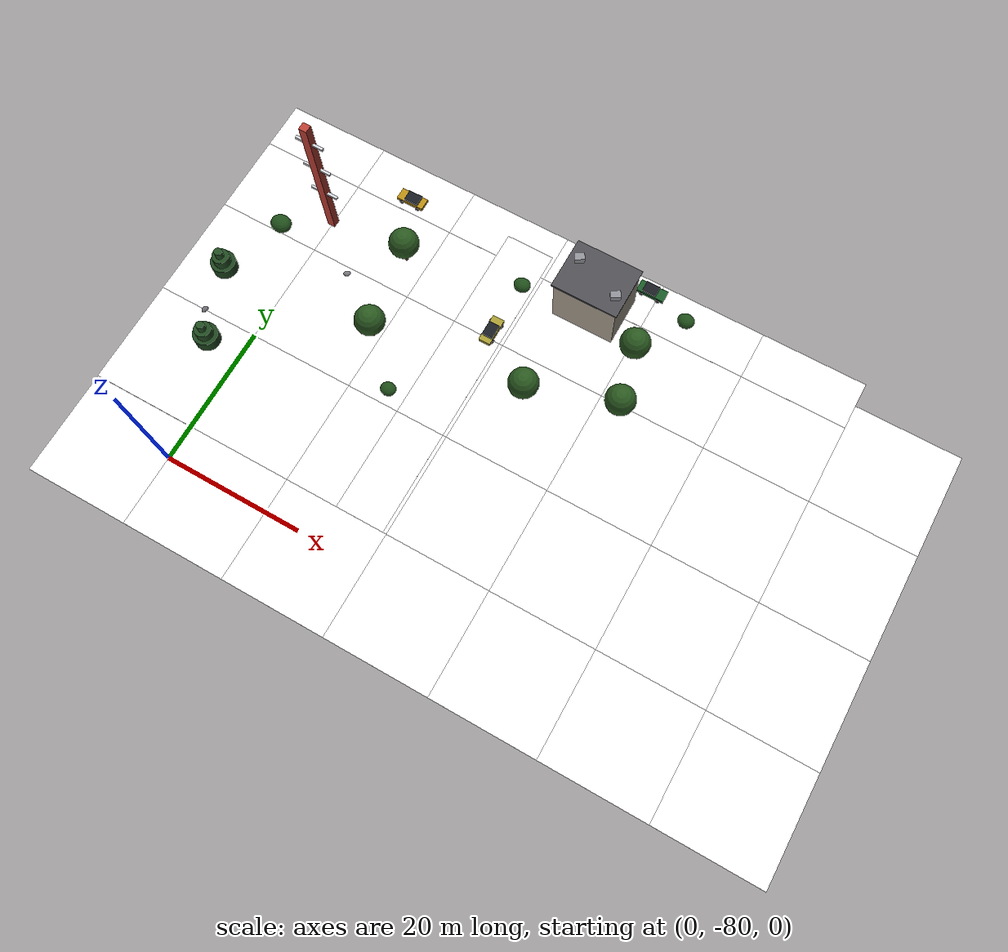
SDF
<sdf version="1.9">
 <world name="iris_runway">
  <model name="ground">
   <static>true</static>
   <link name="link">
    <collision name="c">
     <geometry><plane><normal>0 0 1</normal><size>2000 2000</size></plane></geometry>
    </collision>
   </link>
  </model>
  <include>
   <name>g_5_0</name>
   <pose degrees="true">-7.5 -82.5 0.01 0 0 90</pose>
   <uri>model://grass_tile</uri>
  </include>
  <include>
   <name>g_5_1</name>
   <pose degrees="true">-7.5 -67.5 0.01 0 0 0</pose>
   <uri>model://grass_tile_worn</uri>
  </include>
  <include>
   <name>g_5_2</name>
   <pose degrees="true">-7.5 -52.5 0.01 0 0 180</pose>
   <uri>model://grass_tile</uri>
  </include>
  <include>
   <name>g_5_3</name>
   <pose degrees="true">-7.5 -37.5 0.01 0 0 0</pose>
   <uri>model://grass_tile_worn</uri>
  </include>
  <include>
   <name>g_6_0</name>
   <pose degrees="true">7.5 -82.5 0.01 0 0 180</pose>
   <uri>model://grass_tile</uri>
  </include>
  <include>
   <name>g_6_1</name>
   <pose degrees="true">7.5 -67.5 0.01 0 0 270</pose>
   <uri>model://grass_tile</uri>
  </include>
  <include>
   <name>g_6_2</name>
   <pose degrees="true">7.5 -52.5 0.01 0 0 90</pose>
   <uri>model://grass_tile</uri>
  </include>
  <include>
   <name>g_6_3</name>
   <pose degrees="true">7.5 -37.5 0.01 0 0 270</pose>
   <uri>model://grass_tile</uri>
  </include>
  <include>
   <name>g_7_0</name>
   <pose degrees="true">22.5 -82.5 0.01 0 0 0</pose>
   <uri>model://grass_tile_worn</uri>
  </include>
  <include>
   <name>g_7_1</name>
   <pose degrees="true">22.5 -67.5 0.01 0 0 90</pose>
   <uri>model://grass_tile</uri>
  </include>
  <include>
   <name>g_7_2</name>
   <pose degrees="true">22.5 -52.5 0.01 0 0 270</pose>
   <uri>model://grass_tile</uri>
  </include>
  <include>
   <name>g_7_3</name>
   <pose degrees="true">22.5 -37.5 0.01 0 0 90</pose>
   <uri>model://grass_tile_worn</uri>
  </include>
  <include>
   <name>g_8_0</name>
   <pose degrees="true">37.5 -82.5 0.01 0 0 180</pose>
   <uri>model://grass_tile</uri>
  </include>
  <include>
   <name>g_8_1</name>
   <pose degrees="true">37.5 -67.5 0.01 0 0 270</pose>
   <uri>model://grass_tile</uri>
  </include>
  <include>
   <name>g_8_2</name>
   <pose degrees="true">37.5 -52.5 0.01 0 0 90</pose>
   <uri>model://grass_tile</uri>
  </include>
  <include>
   <name>g_8_3</name>
   <pose degrees="true">37.5 -37.5 0.01 0 0 270</pose>
   <uri>model://grass_tile</uri>
  </include>
  <include>
   <name>g_9_0</name>
   <pose degrees="true">52.5 -82.5 0.01 0 0 0</pose>
   <uri>model://grass_tile</uri>
  </include>
  <include>
   <name>g_9_1</name>
   <pose degrees="true">52.5 -67.5 0.01 0 0 90</pose>
   <uri>model://grass_tile</uri>
  </include>
  <include>
   <name>g_9_2</name>
   <pose degrees="true">52.5 -52.5 0.01 0 0 270</pose>
   <uri>model://grass_tile</uri>
  </include>
  <include>
   <name>g_9_3</name>
   <pose degrees="true">52.5 -37.5 0.01 0 0 90</pose>
   <uri>model://grass_tile</uri>
  </include>
  <include>
   <name>g_10_0</name>
   <pose degrees="true">67.5 -82.5 0.01 0 0 180</pose>
   <uri>model://grass_tile</uri>
  </include>
  <include>
   <name>g_10_1</name>
   <pose degrees="true">67.5 -67.5 0.01 0 0 270</pose>
   <uri>model://grass_tile</uri>
  </include>
  <include>
   <name>g_10_2</name>
   <pose degrees="true">67.5 -52.5 0.01 0 0 90</pose>
   <uri>model://grass_tile_worn</uri>
  </include>
  <include>
   <name>g_10_3</name>
   <pose degrees="true">67.5 -37.5 0.01 0 0 270</pose>
   <uri>model://grass_tile</uri>
  </include>
  <include>
   <name>g_11_0</name>
   <pose degrees="true">82.5 -82.5 0.01 0 0 270</pose>
   <uri>model://grass_tile</uri>
  </include>
  <include>
   <name>g_11_1</name>
   <pose degrees="true">82.5 -67.5 0.01 0 0 180</pose>
   <uri>model://grass_tile</uri>
  </include>
  <include>
   <name>g_11_2</name>
   <pose degrees="true">82.5 -52.5 0.01 0 0 0</pose>
   <uri>model://grass_tile</uri>
  </include>
  <include>
   <name>g_11_3</name>
   <pose degrees="true">82.5 -37.5 0.01 0 0 180</pose>
   <uri>model://grass_tile</uri>
  </include>
  <include><name>tree_8</name><pose>12 -40 0 0 0 2.5</pose><uri>model://tree_oak</uri></include>
  <include><name>tree_12</name><pose>46 -38 0 0 0 2.2</pose><uri>model://tree_oak</uri></include>
  <include><name>tree_17</name><pose>-8 -54 0 0 0 2.6</pose><uri>model://tree_pine</uri></include>
  <include><name>tree_22</name><pose>36 -50 0 0 0 3.0</pose><uri>model://tree_oak</uri></include>
  <include><name>tree_30</name><pose>14 -52 0 0 0 2.4</pose><uri>model://tree_oak</uri></include>
  <include><name>tree_35</name><pose>-4 -64 0 0 0 2.8</pose><uri>model://tree_pine</uri></include>
  <include><name>tree_38</name><pose>48 -46 0 0 0 1.8</pose><uri>model://tree_oak</uri></include>
  <model name="bldg_13">
   <static>true</static>
   <pose>38 -34 0 0 0 0</pose>
   <link name="l">
    <visual name="walls">
     <pose degrees="true">0 0 4.0 0 0 0</pose>
     <geometry><box><size>9 7 8</size></box></geometry>
     <material>
      <ambient>0.36 0.34 0.31 1</ambient>
      <diffuse>0.66 0.62 0.56 1</diffuse>
      <pbr><metal><roughness>0.85</roughness><metalness>0.0</metalness></metal></pbr>
     </material>
    </visual>
    <visual name="roof">
     <pose degrees="true">0 0 8.15 0 0 0</pose>
     <geometry><box><size>9.5 7.5 0.3</size></box></geometry>
     <material>
      <ambient>0.17 0.17 0.18 1</ambient>
      <diffuse>0.30 0.30 0.32 1</diffuse>
      <pbr><metal><roughness>0.9</roughness><metalness>0.0</metalness></metal></pbr>
     </material>
    </visual>
    <collision name="c">
     <pose>0 0 4.15 0 0 0</pose>
     <geometry><box><size>9 7 8.3</size></box></geometry>
    </collision>
    <visual name="ac_0">
     <pose degrees="true">3.3 -1.3 8.75 0 0 31</pose>
     <geometry><box><size>1.3 1.0 0.9</size></box></geometry>
     <material>
      <ambient>0.30 0.31 0.32 1</ambient>
      <diffuse>0.55 0.56 0.58 1</diffuse>
      <pbr><metal><roughness>0.5</roughness><metalness>0.6</metalness></metal></pbr>
     </material>
    </visual>
    <visual name="ac_1">
     <pose degrees="true">-3.3 1.3 8.75 0 0 31</pose>
     <geometry><box><size>1.3 1.0 0.9</size></box></geometry>
     <material>
      <ambient>0.30 0.31 0.32 1</ambient>
      <diffuse>0.55 0.56 0.58 1</diffuse>
      <pbr><metal><roughness>0.5</roughness><metalness>0.6</metalness></metal></pbr>
     </material>
    </visual>
   </link>
  </model>
  <model name="tower_1">
   <static>true</static>
   <pose>0 -40 0 0 0 0</pose>
   <link name="l">
    <visual name="mast">
     <pose degrees="true">0 0 11.0 0 0 0</pose>
     <geometry><box><size>1.1 1.1 22.0</size></box></geometry>
     <material>
      <ambient>0.40 0.13 0.11 1</ambient>
      <diffuse>0.72 0.24 0.20 1</diffuse>
      <pbr><metal><roughness>0.6</roughness><metalness>0.4</metalness></metal></pbr>
     </material>
    </visual>
    <collision name="c">
     <pose>0 0 11.0 0 0 0</pose>
     <geometry><box><size>1.3 1.3 22.0</size></box></geometry>
    </collision>
    <visual name="arm_0">
     <pose degrees="true">0 0 7.699999999999999 0 0 0</pose>
     <geometry><box><size>4.0 0.35 0.35</size></box></geometry>
     <material>
      <ambient>0.47 0.47 0.48 1</ambient>
      <diffuse>0.85 0.86 0.88 1</diffuse>
      <pbr><metal><roughness>0.6</roughness><metalness>0.4</metalness></metal></pbr>
     </material>
    </visual>
    <visual name="arm_1">
     <pose degrees="true">0 0 13.2 0 0 0</pose>
     <geometry><box><size>4.0 0.35 0.35</size></box></geometry>
     <material>
      <ambient>0.47 0.47 0.48 1</ambient>
      <diffuse>0.85 0.86 0.88 1</diffuse>
      <pbr><metal><roughness>0.6</roughness><metalness>0.4</metalness></metal></pbr>
     </material>
    </visual>
    <visual name="arm_2">
     <pose degrees="true">0 0 18.7 0 0 0</pose>
     <geometry><box><size>4.0 0.35 0.35</size></box></geometry>
     <material>
      <ambient>0.47 0.47 0.48 1</ambient>
      <diffuse>0.85 0.86 0.88 1</diffuse>
      <pbr><metal><roughness>0.6</roughness><metalness>0.4</metalness></metal></pbr>
     </material>
    </visual>
   </link>
  </model>
  <include>
   <name>road_1_4</name>
   <pose degrees="true">-7.5 -30.0 0.021 0 0 0</pose>
   <uri>model://road_tile</uri>
  </include>
  <include>
   <name>road_1_5</name>
   <pose degrees="true">7.5 -30.0 0.021 0 0 0</pose>
   <uri>model://road_tile</uri>
  </include>
  <include>
   <name>road_1_6</name>
   <pose degrees="true">22.5 -30.0 0.021 0 0 0</pose>
   <uri>model://road_tile</uri>
  </include>
  <include>
   <name>road_1_7</name>
   <pose degrees="true">37.5 -30.0 0.021 0 0 0</pose>
   <uri>model://road_tile</uri>
  </include>
  <include>
   <name>road_1_8</name>
   <pose degrees="true">52.5 -30.0 0.021 0 0 0</pose>
   <uri>model://road_tile</uri>
  </include>
  <include>
   <name>road_1_9</name>
   <pose degrees="true">67.5 -30.0 0.021 0 0 0</pose>
   <uri>model://road_tile</uri>
  </include>
  <include>
   <name>road_2_0</name>
   <pose degrees="true">26.0 -67.5 0.022 0 0 90</pose>
   <uri>model://road_tile</uri>
  </include>
  <include>
   <name>road_2_1</name>
   <pose degrees="true">26.0 -52.5 0.022 0 0 90</pose>
   <uri>model://road_tile</uri>
  </include>
  <include>
   <name>road_2_2</name>
   <pose degrees="true">26.0 -37.5 0.022 0 0 90</pose>
   <uri>model://road_tile</uri>
  </include>
  <model name="car_4">
   <static>true</static>
   <pose degrees="true">8 -31.75 0 0 0 180</pose>
   <link name="l">
    <visual name="body">
     <pose degrees="true">0 0 0.55 0 0 0</pose>
     <geometry><box><size>4.0 1.7 0.55</size></box></geometry>
     <material>
      <ambient>0.40 0.30 0.04 1</ambient>
      <diffuse>0.72 0.55 0.08 1</diffuse>
      <pbr><metal><roughness>0.35</roughness><metalness>0.3</metalness></metal></pbr>
     </material>
    </visual>
    <visual name="cabin">
     <pose degrees="true">-0.2 0 1.02 0 0 0</pose>
     <geometry><box><size>2.0 1.5 0.45</size></box></geometry>
     <material>
      <ambient>0.06 0.06 0.07 1</ambient>
      <diffuse>0.10 0.11 0.13 1</diffuse>
      <pbr><metal><roughness>0.25</roughness><metalness>0.2</metalness></metal></pbr>
     </material>
    </visual>
    <visual name="w0">
     <pose>1.25 0.85 0.32 1.5708 0 0</pose>
     <geometry><cylinder><radius>0.32</radius><length>0.24</length></cylinder></geometry>
     <material>
      <ambient>0.04 0.04 0.04 1</ambient>
      <diffuse>0.08 0.08 0.08 1</diffuse>
      <pbr><metal><roughness>0.95</roughness><metalness>0.0</metalness></metal></pbr>
     </material>
    </visual>
    <visual name="w1">
     <pose>1.25 -0.85 0.32 1.5708 0 0</pose>
     <geometry><cylinder><radius>0.32</radius><length>0.24</length></cylinder></geometry>
     <material>
      <ambient>0.04 0.04 0.04 1</ambient>
      <diffuse>0.08 0.08 0.08 1</diffuse>
      <pbr><metal><roughness>0.95</roughness><metalness>0.0</metalness></metal></pbr>
     </material>
    </visual>
    <visual name="w2">
     <pose>-1.25 0.85 0.32 1.5708 0 0</pose>
     <geometry><cylinder><radius>0.32</radius><length>0.24</length></cylinder></geometry>
     <material>
      <ambient>0.04 0.04 0.04 1</ambient>
      <diffuse>0.08 0.08 0.08 1</diffuse>
      <pbr><metal><roughness>0.95</roughness><metalness>0.0</metalness></metal></pbr>
     </material>
    </visual>
    <visual name="w3">
     <pose>-1.25 -0.85 0.32 1.5708 0 0</pose>
     <geometry><cylinder><radius>0.32</radius><length>0.24</length></cylinder></geometry>
     <material>
      <ambient>0.04 0.04 0.04 1</ambient>
      <diffuse>0.08 0.08 0.08 1</diffuse>
      <pbr><metal><roughness>0.95</roughness><metalness>0.0</metalness></metal></pbr>
     </material>
    </visual>
   </link>
  </model>
  <model name="car_8">
   <static>true</static>
   <pose degrees="true">44 -28.25 0 0 0 0</pose>
   <link name="l">
    <visual name="body">
     <pose degrees="true">0 0 0.55 0 0 0</pose>
     <geometry><box><size>4.0 1.7 0.55</size></box></geometry>
     <material>
      <ambient>0.06 0.19 0.08 1</ambient>
      <diffuse>0.10 0.35 0.15 1</diffuse>
      <pbr><metal><roughness>0.35</roughness><metalness>0.3</metalness></metal></pbr>
     </material>
    </visual>
    <visual name="cabin">
     <pose degrees="true">-0.2 0 1.02 0 0 0</pose>
     <geometry><box><size>2.0 1.5 0.45</size></box></geometry>
     <material>
      <ambient>0.06 0.06 0.07 1</ambient>
      <diffuse>0.10 0.11 0.13 1</diffuse>
      <pbr><metal><roughness>0.25</roughness><metalness>0.2</metalness></metal></pbr>
     </material>
    </visual>
    <visual name="w0">
     <pose>1.25 0.85 0.32 1.5708 0 0</pose>
     <geometry><cylinder><radius>0.32</radius><length>0.24</length></cylinder></geometry>
     <material>
      <ambient>0.04 0.04 0.04 1</ambient>
      <diffuse>0.08 0.08 0.08 1</diffuse>
      <pbr><metal><roughness>0.95</roughness><metalness>0.0</metalness></metal></pbr>
     </material>
    </visual>
    <visual name="w1">
     <pose>1.25 -0.85 0.32 1.5708 0 0</pose>
     <geometry><cylinder><radius>0.32</radius><length>0.24</length></cylinder></geometry>
     <material>
      <ambient>0.04 0.04 0.04 1</ambient>
      <diffuse>0.08 0.08 0.08 1</diffuse>
      <pbr><metal><roughness>0.95</roughness><metalness>0.0</metalness></metal></pbr>
     </material>
    </visual>
    <visual name="w2">
     <pose>-1.25 0.85 0.32 1.5708 0 0</pose>
     <geometry><cylinder><radius>0.32</radius><length>0.24</length></cylinder></geometry>
     <material>
      <ambient>0.04 0.04 0.04 1</ambient>
      <diffuse>0.08 0.08 0.08 1</diffuse>
      <pbr><metal><roughness>0.95</roughness><metalness>0.0</metalness></metal></pbr>
     </material>
    </visual>
    <visual name="w3">
     <pose>-1.25 -0.85 0.32 1.5708 0 0</pose>
     <geometry><cylinder><radius>0.32</radius><length>0.24</length></cylinder></geometry>
     <material>
      <ambient>0.04 0.04 0.04 1</ambient>
      <diffuse>0.08 0.08 0.08 1</diffuse>
      <pbr><metal><roughness>0.95</roughness><metalness>0.0</metalness></metal></pbr>
     </material>
    </visual>
   </link>
  </model>
  <model name="car_9">
   <static>true</static>
   <pose degrees="true">27.75 -44 0 0 0 90</pose>
   <link name="l">
    <visual name="body">
     <pose degrees="true">0 0 0.55 0 0 0</pose>
     <geometry><box><size>4.0 1.7 0.55</size></box></geometry>
     <material>
      <ambient>0.36 0.33 0.11 1</ambient>
      <diffuse>0.65 0.60 0.20 1</diffuse>
      <pbr><metal><roughness>0.35</roughness><metalness>0.3</metalness></metal></pbr>
     </material>
    </visual>
    <visual name="cabin">
     <pose degrees="true">-0.2 0 1.02 0 0 0</pose>
     <geometry><box><size>2.0 1.5 0.45</size></box></geometry>
     <material>
      <ambient>0.06 0.06 0.07 1</ambient>
      <diffuse>0.10 0.11 0.13 1</diffuse>
      <pbr><metal><roughness>0.25</roughness><metalness>0.2</metalness></metal></pbr>
     </material>
    </visual>
    <visual name="w0">
     <pose>1.25 0.85 0.32 1.5708 0 0</pose>
     <geometry><cylinder><radius>0.32</radius><length>0.24</length></cylinder></geometry>
     <material>
      <ambient>0.04 0.04 0.04 1</ambient>
      <diffuse>0.08 0.08 0.08 1</diffuse>
      <pbr><metal><roughness>0.95</roughness><metalness>0.0</metalness></metal></pbr>
     </material>
    </visual>
    <visual name="w1">
     <pose>1.25 -0.85 0.32 1.5708 0 0</pose>
     <geometry><cylinder><radius>0.32</radius><length>0.24</length></cylinder></geometry>
     <material>
      <ambient>0.04 0.04 0.04 1</ambient>
      <diffuse>0.08 0.08 0.08 1</diffuse>
      <pbr><metal><roughness>0.95</roughness><metalness>0.0</metalness></metal></pbr>
     </material>
    </visual>
    <visual name="w2">
     <pose>-1.25 0.85 0.32 1.5708 0 0</pose>
     <geometry><cylinder><radius>0.32</radius><length>0.24</length></cylinder></geometry>
     <material>
      <ambient>0.04 0.04 0.04 1</ambient>
      <diffuse>0.08 0.08 0.08 1</diffuse>
      <pbr><metal><roughness>0.95</roughness><metalness>0.0</metalness></metal></pbr>
     </material>
    </visual>
    <visual name="w3">
     <pose>-1.25 -0.85 0.32 1.5708 0 0</pose>
     <geometry><cylinder><radius>0.32</radius><length>0.24</length></cylinder></geometry>
     <material>
      <ambient>0.04 0.04 0.04 1</ambient>
      <diffuse>0.08 0.08 0.08 1</diffuse>
      <pbr><metal><roughness>0.95</roughness><metalness>0.0</metalness></metal></pbr>
     </material>
    </visual>
   </link>
  </model>
  <model name="bush_9">
   <static>true</static>
   <pose>-6 -44 0.68 0 0 0</pose>
   <link name="l">
    <visual name="v">
     <geometry><ellipsoid><radii>1.5 1.35 0.90</radii></ellipsoid></geometry>
     <material>
      <ambient>0.07 0.17 0.06 1</ambient>
      <diffuse>0.12 0.30 0.10 1</diffuse>
      <pbr><metal><roughness>0.95</roughness><metalness>0.0</metalness></metal></pbr>
     </material>
    </visual>
   </link>
  </model>
  <model name="bush_12">
   <static>true</static>
   <pose>50 -30 0.54 0 0 0</pose>
   <link name="l">
    <visual name="v">
     <geometry><ellipsoid><radii>1.2 1.08 0.72</radii></ellipsoid></geometry>
     <material>
      <ambient>0.07 0.17 0.06 1</ambient>
      <diffuse>0.12 0.30 0.10 1</diffuse>
      <pbr><metal><roughness>0.95</roughness><metalness>0.0</metalness></metal></pbr>
     </material>
    </visual>
   </link>
  </model>
  <model name="bush_18">
   <static>true</static>
   <pose>28 -36 0.54 0 0 0</pose>
   <link name="l">
    <visual name="v">
     <geometry><ellipsoid><radii>1.2 1.08 0.72</radii></ellipsoid></geometry>
     <material>
      <ambient>0.07 0.17 0.06 1</ambient>
      <diffuse>0.12 0.30 0.10 1</diffuse>
      <pbr><metal><roughness>0.95</roughness><metalness>0.0</metalness></metal></pbr>
     </material>
    </visual>
   </link>
  </model>
  <model name="bush_24">
   <static>true</static>
   <pose>20 -58 0.50 0 0 0</pose>
   <link name="l">
    <visual name="v">
     <geometry><ellipsoid><radii>1.1 0.99 0.66</radii></ellipsoid></geometry>
     <material>
      <ambient>0.07 0.17 0.06 1</ambient>
      <diffuse>0.12 0.30 0.10 1</diffuse>
      <pbr><metal><roughness>0.95</roughness><metalness>0.0</metalness></metal></pbr>
     </material>
    </visual>
   </link>
  </model>
  <model name="rock_4">
   <static>true</static>
   <pose degrees="true">6 -46 0.17 0 0 32</pose>
   <link name="l">
    <visual name="v">
     <geometry><ellipsoid><radii>0.5 0.38 0.25</radii></ellipsoid></geometry>
     <material>
      <ambient>0.26 0.26 0.27 1</ambient>
      <diffuse>0.47 0.47 0.49 1</diffuse>
      <pbr><metal><roughness>0.98</roughness><metalness>0.0</metalness></metal></pbr>
     </material>
    </visual>
   </link>
  </model>
  <model name="rock_15">
   <static>true</static>
   <pose degrees="true">-8 -60 0.17 0 0 75</pose>
   <link name="l">
    <visual name="v">
     <geometry><ellipsoid><radii>0.5 0.38 0.25</radii></ellipsoid></geometry>
     <material>
      <ambient>0.23 0.23 0.24 1</ambient>
      <diffuse>0.42 0.42 0.44 1</diffuse>
      <pbr><metal><roughness>0.98</roughness><metalness>0.0</metalness></metal></pbr>
     </material>
    </visual>
   </link>
  </model>
 </world>
</sdf>
